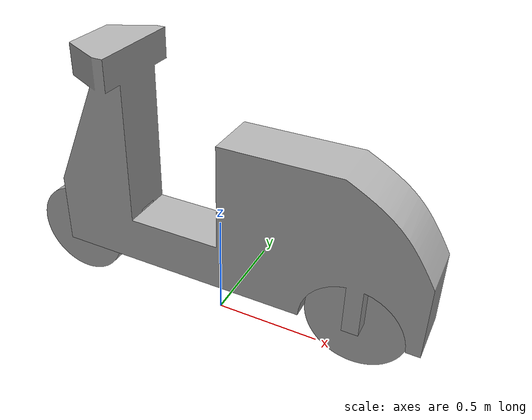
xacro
<?xml version="1.0" ?>
<robot name="aras_bot" xmlns:xacro="http://www.ros.org/wiki/xacro">

<xacro:include filename="$(find aras_bot_description)/urdf/materials.xacro" />
<xacro:include filename="$(find aras_bot_description)/urdf/aras_bot.trans" />
<xacro:include filename="$(find aras_bot_description)/urdf/aras_bot.gazebo" />
<link name="base_link">
  <inertial>
    <origin xyz="0.06481013495129603 7.302365389934582e-06 0.6516569785485231" rpy="0 0 0"/>
    <mass value="1798.6112099463053"/>
    <inertia ixx="121.641889" iyy="598.347461" izz="500.777609" ixy="0.007171" iyz="-0.006447" ixz="32.092595"/>
  </inertial>
  <visual>
    <origin xyz="0 0 0" rpy="0 0 0"/>
    <geometry>
      <mesh filename="package://aras_bot_description/meshes/base_link.stl" scale="0.001 0.001 0.001"/>
    </geometry>
    <material name="silver"/>
  </visual>
  <collision>
    <origin xyz="0 0 0" rpy="0 0 0"/>
    <geometry>
      <mesh filename="package://aras_bot_description/meshes/base_link.stl" scale="0.001 0.001 0.001"/>
    </geometry>
  </collision>
</link>

<link name="front_wheel_1">
  <inertial>
    <origin xyz="-3.547419091809445e-07 0.0480000000000001 -2.7755575615628914e-17" rpy="0 0 0"/>
    <mass value="132.980344743548"/>
    <inertia ixx="1.969472" iyy="3.734686" izz="1.969472" ixy="-0.0" iyz="-0.0" ixz="0.0"/>
  </inertial>
  <visual>
    <origin xyz="0.789293 0.048 -0.237" rpy="0 0 0"/>
    <geometry>
      <mesh filename="package://aras_bot_description/meshes/front_wheel_1.stl" scale="0.001 0.001 0.001"/>
    </geometry>
    <material name="silver"/>
  </visual>
  <collision>
    <origin xyz="0.789293 0.048 -0.237" rpy="0 0 0"/>
    <geometry>
      <mesh filename="package://aras_bot_description/meshes/front_wheel_1.stl" scale="0.001 0.001 0.001"/>
    </geometry>
  </collision>
</link>

<link name="back_wheel_1">
  <inertial>
    <origin xyz="-3.547419089588999e-07 0.04799999999999992 1.942890293094024e-16" rpy="0 0 0"/>
    <mass value="132.980344743548"/>
    <inertia ixx="1.969472" iyy="3.734686" izz="1.969472" ixy="-0.0" iyz="0.0" ixz="0.0"/>
  </inertial>
  <visual>
    <origin xyz="-0.686133 0.048 -0.237" rpy="0 0 0"/>
    <geometry>
      <mesh filename="package://aras_bot_description/meshes/back_wheel_1.stl" scale="0.001 0.001 0.001"/>
    </geometry>
    <material name="silver"/>
  </visual>
  <collision>
    <origin xyz="-0.686133 0.048 -0.237" rpy="0 0 0"/>
    <geometry>
      <mesh filename="package://aras_bot_description/meshes/back_wheel_1.stl" scale="0.001 0.001 0.001"/>
    </geometry>
  </collision>
</link>

<joint name="Rev1" type="continuous">
  <origin xyz="-0.789293 -0.048 0.237" rpy="0 0 0"/>
  <parent link="base_link"/>
  <child link="front_wheel_1"/>
  <axis xyz="0.0 -1.0 0.0"/>
</joint>

<joint name="Rev2" type="continuous">
  <origin xyz="0.686133 -0.048 0.237" rpy="0 0 0"/>
  <parent link="base_link"/>
  <child link="back_wheel_1"/>
  <axis xyz="0.0 1.0 0.0"/>
</joint>

</robot>

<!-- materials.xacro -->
<robot name="aras_bot" xmlns:xacro="http://www.ros.org/wiki/xacro" >

<material name="silver">
  <color rgba="0.700 0.700 0.700 1.000"/>
</material>

</robot>

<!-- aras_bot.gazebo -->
<robot name="aras_bot" xmlns:xacro="http://www.ros.org/wiki/xacro" >

<xacro:property name="body_color" value="Gazebo/Silver" />

<gazebo>
  <plugin name="control" filename="libgazebo_ros_control.so"/>
</gazebo>
<gazebo reference="base_link">
  <material>${body_color}</material>
  <mu1>0.2</mu1>
  <mu2>0.2</mu2>
  <selfCollide>true</selfCollide>
  <gravity>true</gravity>
</gazebo>

<gazebo reference="front_wheel_1">
  <material>${body_color}</material>
  <mu1>0.2</mu1>
  <mu2>0.2</mu2>
  <selfCollide>true</selfCollide>
</gazebo>

<gazebo reference="back_wheel_1">
  <material>${body_color}</material>
  <mu1>0.2</mu1>
  <mu2>0.2</mu2>
  <selfCollide>true</selfCollide>
</gazebo>

</robot>
